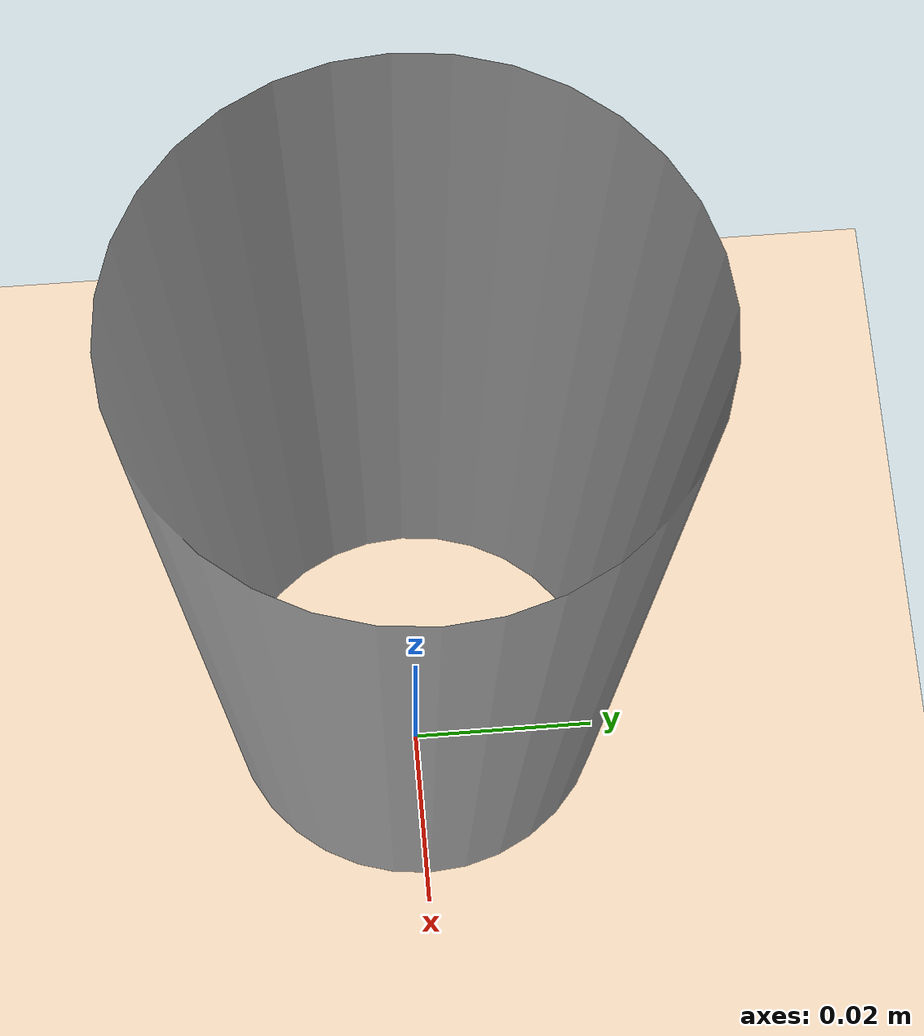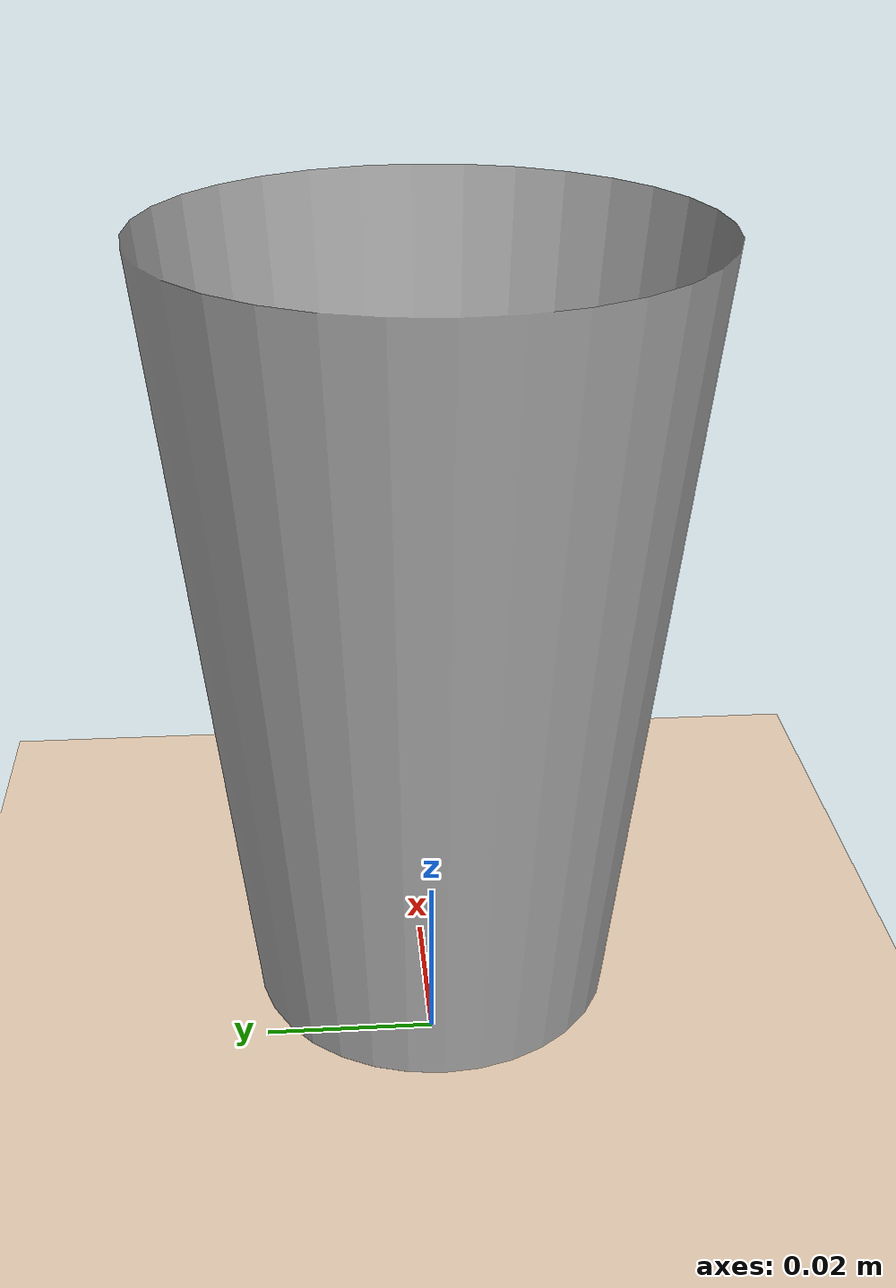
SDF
<?xml version="1.0"?>
<sdf version="1.7" xmlns:drake="http://drake.mit.edu">
  <model name="plate_and_spatula">
    <!-- The table is fixed to the world -->
    <link name="table">
      <inertial>
        <inertia>
          <ixx>0.12003</ixx>
          <ixy>0</ixy>
          <ixz>0</ixz>
          <iyy>0.12003</iyy>
          <iyz>0</iyz>
          <izz>0.24</izz>
        </inertia>
        <mass>1</mass>
        <pose>0 0 0 0 0 0</pose>
      </inertial>
      <visual name="table_visual">
        <pose>0 0 0 0 0 0</pose>
        <geometry>
          <box>
            <size>1.2 1.2 0.02</size>
          </box>
        </geometry>
        <material>
          <diffuse>0.9 0.8 0.7 1</diffuse>
        </material>
      </visual>
      <collision name="table_collision">
        <pose>0 0 0 0 0 0</pose>
        <geometry>
          <box>
            <size>1.2 1.2 0.02</size>
          </box>
        </geometry>
      </collision>
    </link>
    <joint name="table_joint" type="fixed">
      <parent>world</parent>
      <child>table</child>
    </joint>

    <!-- The free-floating plate-->
    <link name="cone0">
      <pose>0 0 0 0 0 0</pose>
      <inertial>
        <pose>0 0 0.033333 0 0 0</pose>
        <mass>0.1</mass>
        <inertia>
          <ixx>0.00075</ixx>
          <ixy>0</ixy>
          <ixz>0</ixz>
          <iyy>0.00075</iyy>
          <iyz>0</iyz>
          <izz>0.0005</izz>
        </inertia>
      </inertial>
      <visual name="visual">
        <pose>0 0 0 0 0 0</pose>
        <geometry>
          <mesh>
            <uri>package://drake/examples/integrators/cup/cup_codim.obj</uri>
            <scale>1.0 1.0 1.0</scale>
          </mesh>
        </geometry>
      </visual>
      <collision name="collision">
        <pose>0 0 0 0 0 0</pose>
        <geometry>
          <mesh>
            <uri>package://drake/examples/integrators/cup/cup_codim.obj</uri>
            <scale>1.0 1.0 1.0</scale>
          </mesh>
        </geometry>
      </collision>
    </link>

        <!-- The free-floating plate-->
    <link name="cone1">
      <pose>0 0 0 0 0 0</pose>
      <inertial>
        <pose>0 0 0.033333 0 0 0</pose>
        <mass>0.1</mass>
        <inertia>
          <ixx>0.00075</ixx>
          <ixy>0</ixy>
          <ixz>0</ixz>
          <iyy>0.00075</iyy>
          <iyz>0</iyz>
          <izz>0.0005</izz>
        </inertia>
      </inertial>
      <visual name="visual">
        <pose>0 0 0 0 0 0</pose>
        <geometry>
          <mesh>
            <uri>package://drake/examples/integrators/cup/cup_codim.obj</uri>
            <scale>1.0 1.0 1.0</scale>
          </mesh>
        </geometry>
      </visual>
      <collision name="collision">
        <pose>0 0 0 0 0 0</pose>
        <geometry>
          <mesh>
            <uri>package://drake/examples/integrators/cup/cup_codim.obj</uri>
            <scale>1.0 1.0 1.0</scale>
          </mesh>
        </geometry>
      </collision>
    </link>

    <link name="cone2">
      <pose>0 0 0 0 0 0</pose>
      <inertial>
        <pose>0 0 0.033333 0 0 0</pose>
        <mass>0.1</mass>
        <inertia>
          <ixx>0.00075</ixx>
          <ixy>0</ixy>
          <ixz>0</ixz>
          <iyy>0.00075</iyy>
          <iyz>0</iyz>
          <izz>0.0005</izz>
        </inertia>
      </inertial>
      <visual name="visual">
        <pose>0 0 0 0 0 0</pose>
        <geometry>
          <mesh>
            <uri>package://drake/examples/integrators/cup/cup_codim.obj</uri>
            <scale>1.0 1.0 1.0</scale>
          </mesh>
        </geometry>
      </visual>
      <collision name="collision">
        <pose>0 0 0 0 0 0</pose>
        <geometry>
          <mesh>
            <uri>package://drake/examples/integrators/cup/cup_codim.obj</uri>
            <scale>1.0 1.0 1.0</scale>
          </mesh>
        </geometry>
      </collision>
    </link>

    <link name="cone3">
      <pose>0 0 0 0 0 0</pose>
      <inertial>
        <pose>0 0 0.033333 0 0 0</pose>
        <mass>0.1</mass>
        <inertia>
          <ixx>0.00075</ixx>
          <ixy>0</ixy>
          <ixz>0</ixz>
          <iyy>0.00075</iyy>
          <iyz>0</iyz>
          <izz>0.0005</izz>
        </inertia>
      </inertial>
      <visual name="visual">
        <pose>0 0 0 0 0 0</pose>
        <geometry>
          <mesh>
            <uri>package://drake/examples/integrators/cup/cup_codim.obj</uri>
            <scale>1.0 1.0 1.0</scale>
          </mesh>
        </geometry>
      </visual>
      <collision name="collision">
        <pose>0 0 0 0 0 0</pose>
        <geometry>
          <mesh>
            <uri>package://drake/examples/integrators/cup/cup_codim.obj</uri>
            <scale>1.0 1.0 1.0</scale>
          </mesh>
        </geometry>
      </collision>
    </link>
        <link name="cone4">
      <pose>0 0 0 0 0 0</pose>
      <inertial>
        <pose>0 0 0.033333 0 0 0</pose>
        <mass>0.1</mass>
        <inertia>
          <ixx>0.00075</ixx>
          <ixy>0</ixy>
          <ixz>0</ixz>
          <iyy>0.00075</iyy>
          <iyz>0</iyz>
          <izz>0.0005</izz>
        </inertia>
      </inertial>
      <visual name="visual">
        <pose>0 0 0 0 0 0</pose>
        <geometry>
          <mesh>
            <uri>package://drake/examples/integrators/cup/cup_codim.obj</uri>
            <scale>1.0 1.0 1.0</scale>
          </mesh>
        </geometry>
      </visual>
      <collision name="collision">
        <pose>0 0 0 0 0 0</pose>
        <geometry>
          <mesh>
            <uri>package://drake/examples/integrators/cup/cup_codim.obj</uri>
            <scale>1.0 1.0 1.0</scale>
          </mesh>
        </geometry>
      </collision>
    </link>

  </model>
</sdf>
